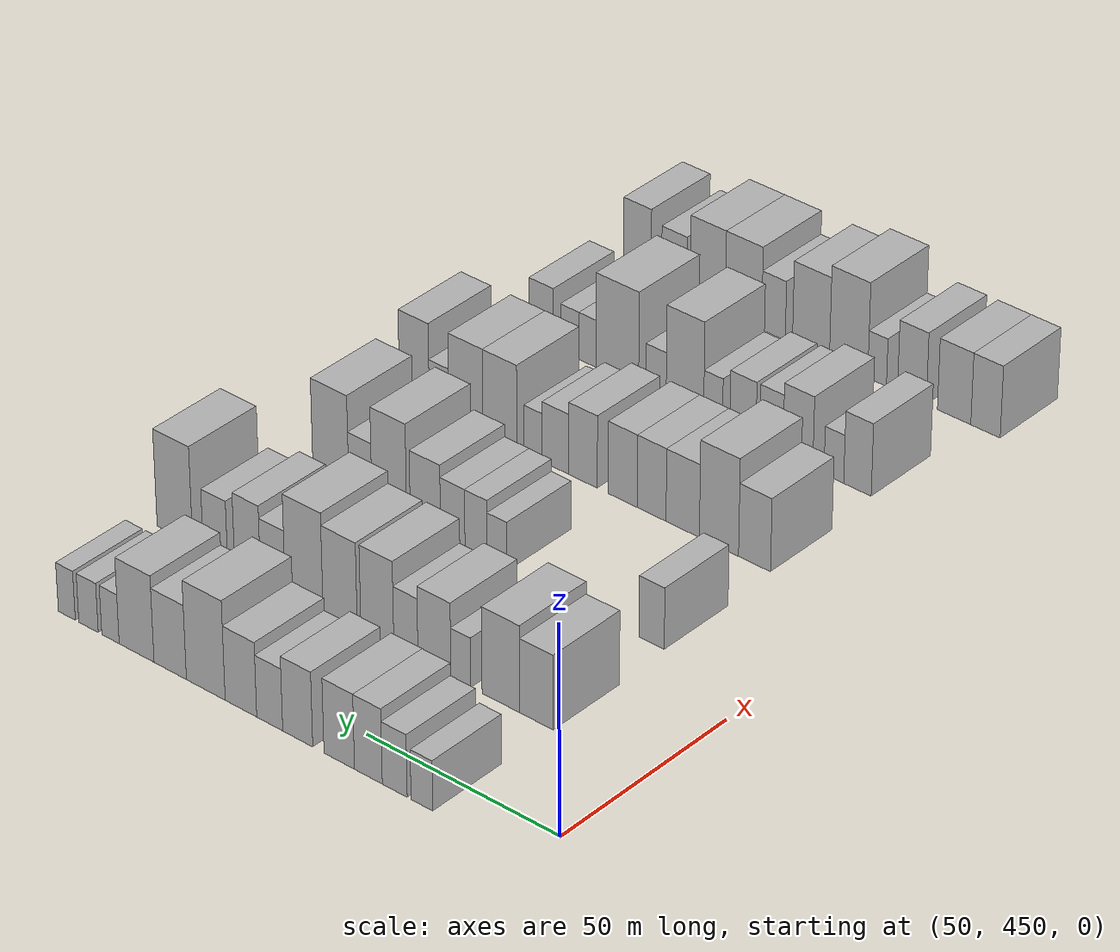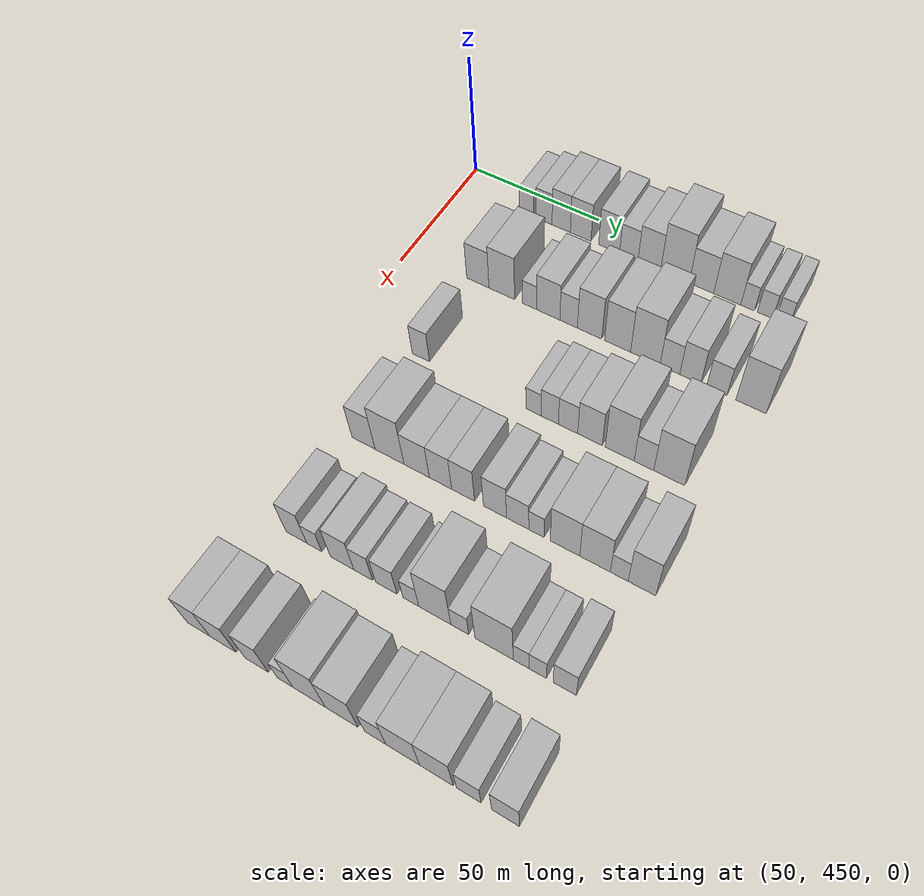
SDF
<sdf version="1.6">
 <world name="default">
  <model name="building_122">
   <static>1</static>
   <pose>50.0000 476.5835 0 0.000000 0.000000 0.000000</pose>
   <link name="link">
    <pose>0 0 6.00 0 0 0</pose>
    <collision name="collision"><geometry><box><size>20.0000 5.6495 12.0000</size></box></geometry></collision>
    <visual name="visual">
     <cast_shadows>0</cast_shadows>
     <geometry><box><size>20.0000 5.6495 12.0000</size></box></geometry>
     <material>
      <script>
       <uri>model://HANNAS_wall/materials/scripts</uri>
       <uri>model://HANNAS_wall/materials/textures</uri>
       <name>vrc/HANNAS_wall</name>
      </script>
     </material>
    </visual>
   </link>
  </model>
  <model name="building_123">
   <static>1</static>
   <pose>50.0000 483.6672 0 0.000000 0.000000 0.000000</pose>
   <link name="link">
    <pose>0 0 7.50 0 0 0</pose>
    <collision name="collision"><geometry><box><size>20.0000 6.5178 15.0000</size></box></geometry></collision>
    <visual name="visual">
     <cast_shadows>0</cast_shadows>
     <geometry><box><size>20.0000 6.5178 15.0000</size></box></geometry>
     <material>
      <script>
       <uri>model://HANNAS_wall/materials/scripts</uri>
       <uri>model://HANNAS_wall/materials/textures</uri>
       <name>vrc/HANNAS_wall</name>
      </script>
     </material>
    </visual>
   </link>
  </model>
  <model name="building_124">
   <static>1</static>
   <pose>50.0000 490.5840 0 0.000000 0.000000 0.000000</pose>
   <link name="link">
    <pose>0 0 9.00 0 0 0</pose>
    <collision name="collision"><geometry><box><size>20.0000 7.3159 18.0000</size></box></geometry></collision>
    <visual name="visual">
     <cast_shadows>0</cast_shadows>
     <geometry><box><size>20.0000 7.3159 18.0000</size></box></geometry>
     <material>
      <script>
       <uri>model://HANNAS_wall/materials/scripts</uri>
       <uri>model://HANNAS_wall/materials/textures</uri>
       <name>vrc/HANNAS_wall</name>
      </script>
     </material>
    </visual>
   </link>
  </model>
  <model name="building_125">
   <static>1</static>
   <pose>50.0000 498.2928 0 0.000000 0.000000 0.000000</pose>
   <link name="link">
    <pose>0 0 9.00 0 0 0</pose>
    <collision name="collision"><geometry><box><size>20.0000 8.1017 18.0000</size></box></geometry></collision>
    <visual name="visual">
     <cast_shadows>0</cast_shadows>
     <geometry><box><size>20.0000 8.1017 18.0000</size></box></geometry>
     <material>
      <script>
       <uri>model://HANNAS_wall/materials/scripts</uri>
       <uri>model://HANNAS_wall/materials/textures</uri>
       <name>vrc/HANNAS_wall</name>
      </script>
     </material>
    </visual>
   </link>
  </model>
  <model name="building_126">
   <static>1</static>
   <pose>50.0000 509.3685 0 0.000000 0.000000 0.000000</pose>
   <link name="link">
    <pose>0 0 9.00 0 0 0</pose>
    <collision name="collision"><geometry><box><size>20.0000 8.0498 18.0000</size></box></geometry></collision>
    <visual name="visual">
     <cast_shadows>0</cast_shadows>
     <geometry><box><size>20.0000 8.0498 18.0000</size></box></geometry>
     <material>
      <script>
       <uri>model://HANNAS_wall/materials/scripts</uri>
       <uri>model://HANNAS_wall/materials/textures</uri>
       <name>vrc/HANNAS_wall</name>
      </script>
     </material>
    </visual>
   </link>
  </model>
  <model name="building_127">
   <static>1</static>
   <pose>50.0000 516.9005 0 0.000000 0.000000 0.000000</pose>
   <link name="link">
    <pose>0 0 7.50 0 0 0</pose>
    <collision name="collision"><geometry><box><size>20.0000 7.0142 15.0000</size></box></geometry></collision>
    <visual name="visual">
     <cast_shadows>0</cast_shadows>
     <geometry><box><size>20.0000 7.0142 15.0000</size></box></geometry>
     <material>
      <script>
       <uri>model://HANNAS_wall/materials/scripts</uri>
       <uri>model://HANNAS_wall/materials/textures</uri>
       <name>vrc/HANNAS_wall</name>
      </script>
     </material>
    </visual>
   </link>
  </model>
  <model name="building_128">
   <static>1</static>
   <pose>50.0000 524.6987 0 0.000000 0.000000 0.000000</pose>
   <link name="link">
    <pose>0 0 9.00 0 0 0</pose>
    <collision name="collision"><geometry><box><size>20.0000 8.5821 18.0000</size></box></geometry></collision>
    <visual name="visual">
     <cast_shadows>0</cast_shadows>
     <geometry><box><size>20.0000 8.5821 18.0000</size></box></geometry>
     <material>
      <script>
       <uri>model://HANNAS_wall/materials/scripts</uri>
       <uri>model://HANNAS_wall/materials/textures</uri>
       <name>vrc/HANNAS_wall</name>
      </script>
     </material>
    </visual>
   </link>
  </model>
  <model name="building_129">
   <static>1</static>
   <pose>50.0000 534.3169 0 0.000000 0.000000 0.000000</pose>
   <link name="link">
    <pose>0 0 12.00 0 0 0</pose>
    <collision name="collision"><geometry><box><size>20.0000 10.6543 24.0000</size></box></geometry></collision>
    <visual name="visual">
     <cast_shadows>0</cast_shadows>
     <geometry><box><size>20.0000 10.6543 24.0000</size></box></geometry>
     <material>
      <script>
       <uri>model://HANNAS_wall/materials/scripts</uri>
       <uri>model://HANNAS_wall/materials/textures</uri>
       <name>vrc/HANNAS_wall</name>
      </script>
     </material>
    </visual>
   </link>
  </model>
  <model name="building_130">
   <static>1</static>
   <pose>50.0000 544.1222 0 0.000000 0.000000 0.000000</pose>
   <link name="link">
    <pose>0 0 9.00 0 0 0</pose>
    <collision name="collision"><geometry><box><size>20.0000 8.9563 18.0000</size></box></geometry></collision>
    <visual name="visual">
     <cast_shadows>0</cast_shadows>
     <geometry><box><size>20.0000 8.9563 18.0000</size></box></geometry>
     <material>
      <script>
       <uri>model://HANNAS_wall/materials/scripts</uri>
       <uri>model://HANNAS_wall/materials/textures</uri>
       <name>vrc/HANNAS_wall</name>
      </script>
     </material>
    </visual>
   </link>
  </model>
  <model name="building_131">
   <static>1</static>
   <pose>50.0000 553.4761 0 0.000000 0.000000 0.000000</pose>
   <link name="link">
    <pose>0 0 10.50 0 0 0</pose>
    <collision name="collision"><geometry><box><size>20.0000 9.7514 21.0000</size></box></geometry></collision>
    <visual name="visual">
     <cast_shadows>0</cast_shadows>
     <geometry><box><size>20.0000 9.7514 21.0000</size></box></geometry>
     <material>
      <script>
       <uri>model://HANNAS_wall/materials/scripts</uri>
       <uri>model://HANNAS_wall/materials/textures</uri>
       <name>vrc/HANNAS_wall</name>
      </script>
     </material>
    </visual>
   </link>
  </model>
  <model name="building_132">
   <static>1</static>
   <pose>50.0000 560.8015 0 0.000000 0.000000 0.000000</pose>
   <link name="link">
    <pose>0 0 6.00 0 0 0</pose>
    <collision name="collision"><geometry><box><size>20.0000 4.8995 12.0000</size></box></geometry></collision>
    <visual name="visual">
     <cast_shadows>0</cast_shadows>
     <geometry><box><size>20.0000 4.8995 12.0000</size></box></geometry>
     <material>
      <script>
       <uri>model://HANNAS_wall/materials/scripts</uri>
       <uri>model://HANNAS_wall/materials/textures</uri>
       <name>vrc/HANNAS_wall</name>
      </script>
     </material>
    </visual>
   </link>
  </model>
  <model name="building_133">
   <static>1</static>
   <pose>50.0000 566.9949 0 0.000000 0.000000 0.000000</pose>
   <link name="link">
    <pose>0 0 6.00 0 0 0</pose>
    <collision name="collision"><geometry><box><size>20.0000 5.4872 12.0000</size></box></geometry></collision>
    <visual name="visual">
     <cast_shadows>0</cast_shadows>
     <geometry><box><size>20.0000 5.4872 12.0000</size></box></geometry>
     <material>
      <script>
       <uri>model://HANNAS_wall/materials/scripts</uri>
       <uri>model://HANNAS_wall/materials/textures</uri>
       <name>vrc/HANNAS_wall</name>
      </script>
     </material>
    </visual>
   </link>
  </model>
  <model name="building_134">
   <static>1</static>
   <pose>50.0000 573.1457 0 0.000000 0.000000 0.000000</pose>
   <link name="link">
    <pose>0 0 6.00 0 0 0</pose>
    <collision name="collision"><geometry><box><size>20.0000 4.8145 12.0000</size></box></geometry></collision>
    <visual name="visual">
     <cast_shadows>0</cast_shadows>
     <geometry><box><size>20.0000 4.8145 12.0000</size></box></geometry>
     <material>
      <script>
       <uri>model://HANNAS_wall/materials/scripts</uri>
       <uri>model://HANNAS_wall/materials/textures</uri>
       <name>vrc/HANNAS_wall</name>
      </script>
     </material>
    </visual>
   </link>
  </model>
  <model name="building_249">
   <static>1</static>
   <pose>85.0000 477.8482 0 0.000000 0.000000 0.000000</pose>
   <link name="link">
    <pose>0 0 9.00 0 0 0</pose>
    <collision name="collision"><geometry><box><size>20.0000 8.7341 18.0000</size></box></geometry></collision>
    <visual name="visual">
     <cast_shadows>0</cast_shadows>
     <geometry><box><size>20.0000 8.7341 18.0000</size></box></geometry>
     <material>
      <script>
       <uri>model://HANNAS_wall/materials/scripts</uri>
       <uri>model://HANNAS_wall/materials/textures</uri>
       <name>vrc/HANNAS_wall</name>
      </script>
     </material>
    </visual>
   </link>
  </model>
  <model name="building_250">
   <static>1</static>
   <pose>85.0000 487.1938 0 0.000000 0.000000 0.000000</pose>
   <link name="link">
    <pose>0 0 10.50 0 0 0</pose>
    <collision name="collision"><geometry><box><size>20.0000 9.9571 21.0000</size></box></geometry></collision>
    <visual name="visual">
     <cast_shadows>0</cast_shadows>
     <geometry><box><size>20.0000 9.9571 21.0000</size></box></geometry>
     <material>
      <script>
       <uri>model://HANNAS_wall/materials/scripts</uri>
       <uri>model://HANNAS_wall/materials/textures</uri>
       <name>vrc/HANNAS_wall</name>
      </script>
     </material>
    </visual>
   </link>
  </model>
  <model name="building_251">
   <static>1</static>
   <pose>85.0000 497.8046 0 0.000000 0.000000 0.000000</pose>
   <link name="link">
    <pose>0 0 6.00 0 0 0</pose>
    <collision name="collision"><geometry><box><size>20.0000 5.2644 12.0000</size></box></geometry></collision>
    <visual name="visual">
     <cast_shadows>0</cast_shadows>
     <geometry><box><size>20.0000 5.2644 12.0000</size></box></geometry>
     <material>
      <script>
       <uri>model://HANNAS_wall/materials/scripts</uri>
       <uri>model://HANNAS_wall/materials/textures</uri>
       <name>vrc/HANNAS_wall</name>
      </script>
     </material>
    </visual>
   </link>
  </model>
  <model name="building_252">
   <static>1</static>
   <pose>85.0000 504.8577 0 0.000000 0.000000 0.000000</pose>
   <link name="link">
    <pose>0 0 9.00 0 0 0</pose>
    <collision name="collision"><geometry><box><size>20.0000 8.8419 18.0000</size></box></geometry></collision>
    <visual name="visual">
     <cast_shadows>0</cast_shadows>
     <geometry><box><size>20.0000 8.8419 18.0000</size></box></geometry>
     <material>
      <script>
       <uri>model://HANNAS_wall/materials/scripts</uri>
       <uri>model://HANNAS_wall/materials/textures</uri>
       <name>vrc/HANNAS_wall</name>
      </script>
     </material>
    </visual>
   </link>
  </model>
  <model name="building_253">
   <static>1</static>
   <pose>85.0000 512.5363 0 0.000000 0.000000 0.000000</pose>
   <link name="link">
    <pose>0 0 7.50 0 0 0</pose>
    <collision name="collision"><geometry><box><size>20.0000 6.5153 15.0000</size></box></geometry></collision>
    <visual name="visual">
     <cast_shadows>0</cast_shadows>
     <geometry><box><size>20.0000 6.5153 15.0000</size></box></geometry>
     <material>
      <script>
       <uri>model://HANNAS_wall/materials/scripts</uri>
       <uri>model://HANNAS_wall/materials/textures</uri>
       <name>vrc/HANNAS_wall</name>
      </script>
     </material>
    </visual>
   </link>
  </model>
  <model name="building_254">
   <static>1</static>
   <pose>85.0000 520.2665 0 0.000000 0.000000 0.000000</pose>
   <link name="link">
    <pose>0 0 10.50 0 0 0</pose>
    <collision name="collision"><geometry><box><size>20.0000 8.9451 21.0000</size></box></geometry></collision>
    <visual name="visual">
     <cast_shadows>0</cast_shadows>
     <geometry><box><size>20.0000 8.9451 21.0000</size></box></geometry>
     <material>
      <script>
       <uri>model://HANNAS_wall/materials/scripts</uri>
       <uri>model://HANNAS_wall/materials/textures</uri>
       <name>vrc/HANNAS_wall</name>
      </script>
     </material>
    </visual>
   </link>
  </model>
  <model name="building_255">
   <static>1</static>
   <pose>85.0000 530.4362 0 0.000000 0.000000 0.000000</pose>
   <link name="link">
    <pose>0 0 10.50 0 0 0</pose>
    <collision name="collision"><geometry><box><size>20.0000 9.3942 21.0000</size></box></geometry></collision>
    <visual name="visual">
     <cast_shadows>0</cast_shadows>
     <geometry><box><size>20.0000 9.3942 21.0000</size></box></geometry>
     <material>
      <script>
       <uri>model://HANNAS_wall/materials/scripts</uri>
       <uri>model://HANNAS_wall/materials/textures</uri>
       <name>vrc/HANNAS_wall</name>
      </script>
     </material>
    </visual>
   </link>
  </model>
  <model name="building_256">
   <static>1</static>
   <pose>85.0000 540.3655 0 0.000000 0.000000 0.000000</pose>
   <link name="link">
    <pose>0 0 12.00 0 0 0</pose>
    <collision name="collision"><geometry><box><size>20.0000 10.4645 24.0000</size></box></geometry></collision>
    <visual name="visual">
     <cast_shadows>0</cast_shadows>
     <geometry><box><size>20.0000 10.4645 24.0000</size></box></geometry>
     <material>
      <script>
       <uri>model://HANNAS_wall/materials/scripts</uri>
       <uri>model://HANNAS_wall/materials/textures</uri>
       <name>vrc/HANNAS_wall</name>
      </script>
     </material>
    </visual>
   </link>
  </model>
  <model name="building_257">
   <static>1</static>
   <pose>85.0000 549.0484 0 0.000000 0.000000 0.000000</pose>
   <link name="link">
    <pose>0 0 7.50 0 0 0</pose>
    <collision name="collision"><geometry><box><size>20.0000 6.9014 15.0000</size></box></geometry></collision>
    <visual name="visual">
     <cast_shadows>0</cast_shadows>
     <geometry><box><size>20.0000 6.9014 15.0000</size></box></geometry>
     <material>
      <script>
       <uri>model://HANNAS_wall/materials/scripts</uri>
       <uri>model://HANNAS_wall/materials/textures</uri>
       <name>vrc/HANNAS_wall</name>
      </script>
     </material>
    </visual>
   </link>
  </model>
  <model name="building_258">
   <static>1</static>
   <pose>85.0000 556.1403 0 0.000000 0.000000 0.000000</pose>
   <link name="link">
    <pose>0 0 9.00 0 0 0</pose>
    <collision name="collision"><geometry><box><size>20.0000 7.2825 18.0000</size></box></geometry></collision>
    <visual name="visual">
     <cast_shadows>0</cast_shadows>
     <geometry><box><size>20.0000 7.2825 18.0000</size></box></geometry>
     <material>
      <script>
       <uri>model://HANNAS_wall/materials/scripts</uri>
       <uri>model://HANNAS_wall/materials/textures</uri>
       <name>vrc/HANNAS_wall</name>
      </script>
     </material>
    </visual>
   </link>
  </model>
  <model name="building_259">
   <static>1</static>
   <pose>85.0000 565.2405 0 0.000000 0.000000 0.000000</pose>
   <link name="link">
    <pose>0 0 7.50 0 0 0</pose>
    <collision name="collision"><geometry><box><size>20.0000 6.9178 15.0000</size></box></geometry></collision>
    <visual name="visual">
     <cast_shadows>0</cast_shadows>
     <geometry><box><size>20.0000 6.9178 15.0000</size></box></geometry>
     <material>
      <script>
       <uri>model://HANNAS_wall/materials/scripts</uri>
       <uri>model://HANNAS_wall/materials/textures</uri>
       <name>vrc/HANNAS_wall</name>
      </script>
     </material>
    </visual>
   </link>
  </model>
  <model name="building_260">
   <static>1</static>
   <pose>85.0000 576.7835 0 0.000000 0.000000 0.000000</pose>
   <link name="link">
    <pose>0 0 12.00 0 0 0</pose>
    <collision name="collision"><geometry><box><size>20.0000 10.1681 24.0000</size></box></geometry></collision>
    <visual name="visual">
     <cast_shadows>0</cast_shadows>
     <geometry><box><size>20.0000 10.1681 24.0000</size></box></geometry>
     <material>
      <script>
       <uri>model://HANNAS_wall/materials/scripts</uri>
       <uri>model://HANNAS_wall/materials/textures</uri>
       <name>vrc/HANNAS_wall</name>
      </script>
     </material>
    </visual>
   </link>
  </model>
  <model name="building_361">
   <static>1</static>
   <pose>120.0000 477.8248 0 0.000000 0.000000 0.000000</pose>
   <link name="link">
    <pose>0 0 7.50 0 0 0</pose>
    <collision name="collision"><geometry><box><size>20.0000 6.6035 15.0000</size></box></geometry></collision>
    <visual name="visual">
     <cast_shadows>0</cast_shadows>
     <geometry><box><size>20.0000 6.6035 15.0000</size></box></geometry>
     <material>
      <script>
       <uri>model://HANNAS_wall/materials/scripts</uri>
       <uri>model://HANNAS_wall/materials/textures</uri>
       <name>vrc/HANNAS_wall</name>
      </script>
     </material>
    </visual>
   </link>
  </model>
  <model name="building_362">
   <static>1</static>
   <pose>120.0000 519.1641 0 0.000000 0.000000 0.000000</pose>
   <link name="link">
    <pose>0 0 6.00 0 0 0</pose>
    <collision name="collision"><geometry><box><size>20.0000 5.3584 12.0000</size></box></geometry></collision>
    <visual name="visual">
     <cast_shadows>0</cast_shadows>
     <geometry><box><size>20.0000 5.3584 12.0000</size></box></geometry>
     <material>
      <script>
       <uri>model://HANNAS_wall/materials/scripts</uri>
       <uri>model://HANNAS_wall/materials/textures</uri>
       <name>vrc/HANNAS_wall</name>
      </script>
     </material>
    </visual>
   </link>
  </model>
  <model name="building_363">
   <static>1</static>
   <pose>120.0000 524.9019 0 0.000000 0.000000 0.000000</pose>
   <link name="link">
    <pose>0 0 7.50 0 0 0</pose>
    <collision name="collision"><geometry><box><size>20.0000 6.1173 15.0000</size></box></geometry></collision>
    <visual name="visual">
     <cast_shadows>0</cast_shadows>
     <geometry><box><size>20.0000 6.1173 15.0000</size></box></geometry>
     <material>
      <script>
       <uri>model://HANNAS_wall/materials/scripts</uri>
       <uri>model://HANNAS_wall/materials/textures</uri>
       <name>vrc/HANNAS_wall</name>
      </script>
     </material>
    </visual>
   </link>
  </model>
  <model name="building_364">
   <static>1</static>
   <pose>120.0000 531.3183 0 0.000000 0.000000 0.000000</pose>
   <link name="link">
    <pose>0 0 7.50 0 0 0</pose>
    <collision name="collision"><geometry><box><size>20.0000 6.7154 15.0000</size></box></geometry></collision>
    <visual name="visual">
     <cast_shadows>0</cast_shadows>
     <geometry><box><size>20.0000 6.7154 15.0000</size></box></geometry>
     <material>
      <script>
       <uri>model://HANNAS_wall/materials/scripts</uri>
       <uri>model://HANNAS_wall/materials/textures</uri>
       <name>vrc/HANNAS_wall</name>
      </script>
     </material>
    </visual>
   </link>
  </model>
  <model name="building_365">
   <static>1</static>
   <pose>120.0000 538.8794 0 0.000000 0.000000 0.000000</pose>
   <link name="link">
    <pose>0 0 9.00 0 0 0</pose>
    <collision name="collision"><geometry><box><size>20.0000 8.4069 18.0000</size></box></geometry></collision>
    <visual name="visual">
     <cast_shadows>0</cast_shadows>
     <geometry><box><size>20.0000 8.4069 18.0000</size></box></geometry>
     <material>
      <script>
       <uri>model://HANNAS_wall/materials/scripts</uri>
       <uri>model://HANNAS_wall/materials/textures</uri>
       <name>vrc/HANNAS_wall</name>
      </script>
     </material>
    </visual>
   </link>
  </model>
  <model name="building_366">
   <static>1</static>
   <pose>120.0000 548.9608 0 0.000000 0.000000 0.000000</pose>
   <link name="link">
    <pose>0 0 12.00 0 0 0</pose>
    <collision name="collision"><geometry><box><size>20.0000 9.7559 24.0000</size></box></geometry></collision>
    <visual name="visual">
     <cast_shadows>0</cast_shadows>
     <geometry><box><size>20.0000 9.7559 24.0000</size></box></geometry>
     <material>
      <script>
       <uri>model://HANNAS_wall/materials/scripts</uri>
       <uri>model://HANNAS_wall/materials/textures</uri>
       <name>vrc/HANNAS_wall</name>
      </script>
     </material>
    </visual>
   </link>
  </model>
  <model name="building_367">
   <static>1</static>
   <pose>120.0000 557.0920 0 0.000000 0.000000 0.000000</pose>
   <link name="link">
    <pose>0 0 7.50 0 0 0</pose>
    <collision name="collision"><geometry><box><size>20.0000 6.5063 15.0000</size></box></geometry></collision>
    <visual name="visual">
     <cast_shadows>0</cast_shadows>
     <geometry><box><size>20.0000 6.5063 15.0000</size></box></geometry>
     <material>
      <script>
       <uri>model://HANNAS_wall/materials/scripts</uri>
       <uri>model://HANNAS_wall/materials/textures</uri>
       <name>vrc/HANNAS_wall</name>
      </script>
     </material>
    </visual>
   </link>
  </model>
  <model name="building_368">
   <static>1</static>
   <pose>120.0000 565.4447 0 0.000000 0.000000 0.000000</pose>
   <link name="link">
    <pose>0 0 12.00 0 0 0</pose>
    <collision name="collision"><geometry><box><size>20.0000 10.1991 24.0000</size></box></geometry></collision>
    <visual name="visual">
     <cast_shadows>0</cast_shadows>
     <geometry><box><size>20.0000 10.1991 24.0000</size></box></geometry>
     <material>
      <script>
       <uri>model://HANNAS_wall/materials/scripts</uri>
       <uri>model://HANNAS_wall/materials/textures</uri>
       <name>vrc/HANNAS_wall</name>
      </script>
     </material>
    </visual>
   </link>
  </model>
  <model name="building_481">
   <static>1</static>
   <pose>155.0000 479.9306 0 0.000000 0.000000 0.000000</pose>
   <link name="link">
    <pose>0 0 9.00 0 0 0</pose>
    <collision name="collision"><geometry><box><size>20.0000 8.4593 18.0000</size></box></geometry></collision>
    <visual name="visual">
     <cast_shadows>0</cast_shadows>
     <geometry><box><size>20.0000 8.4593 18.0000</size></box></geometry>
     <material>
      <script>
       <uri>model://HANNAS_wall/materials/scripts</uri>
       <uri>model://HANNAS_wall/materials/textures</uri>
       <name>vrc/HANNAS_wall</name>
      </script>
     </material>
    </visual>
   </link>
  </model>
  <model name="building_482">
   <static>1</static>
   <pose>155.0000 489.3802 0 0.000000 0.000000 0.000000</pose>
   <link name="link">
    <pose>0 0 12.00 0 0 0</pose>
    <collision name="collision"><geometry><box><size>20.0000 10.4399 24.0000</size></box></geometry></collision>
    <visual name="visual">
     <cast_shadows>0</cast_shadows>
     <geometry><box><size>20.0000 10.4399 24.0000</size></box></geometry>
     <material>
      <script>
       <uri>model://HANNAS_wall/materials/scripts</uri>
       <uri>model://HANNAS_wall/materials/textures</uri>
       <name>vrc/HANNAS_wall</name>
      </script>
     </material>
    </visual>
   </link>
  </model>
  <model name="building_483">
   <static>1</static>
   <pose>155.0000 499.0862 0 0.000000 0.000000 0.000000</pose>
   <link name="link">
    <pose>0 0 9.00 0 0 0</pose>
    <collision name="collision"><geometry><box><size>20.0000 8.9720 18.0000</size></box></geometry></collision>
    <visual name="visual">
     <cast_shadows>0</cast_shadows>
     <geometry><box><size>20.0000 8.9720 18.0000</size></box></geometry>
     <material>
      <script>
       <uri>model://HANNAS_wall/materials/scripts</uri>
       <uri>model://HANNAS_wall/materials/textures</uri>
       <name>vrc/HANNAS_wall</name>
      </script>
     </material>
    </visual>
   </link>
  </model>
  <model name="building_484">
   <static>1</static>
   <pose>155.0000 507.4782 0 0.000000 0.000000 0.000000</pose>
   <link name="link">
    <pose>0 0 9.00 0 0 0</pose>
    <collision name="collision"><geometry><box><size>20.0000 7.8121 18.0000</size></box></geometry></collision>
    <visual name="visual">
     <cast_shadows>0</cast_shadows>
     <geometry><box><size>20.0000 7.8121 18.0000</size></box></geometry>
     <material>
      <script>
       <uri>model://HANNAS_wall/materials/scripts</uri>
       <uri>model://HANNAS_wall/materials/textures</uri>
       <name>vrc/HANNAS_wall</name>
      </script>
     </material>
    </visual>
   </link>
  </model>
  <model name="building_485">
   <static>1</static>
   <pose>155.0000 515.3359 0 0.000000 0.000000 0.000000</pose>
   <link name="link">
    <pose>0 0 9.00 0 0 0</pose>
    <collision name="collision"><geometry><box><size>20.0000 7.9033 18.0000</size></box></geometry></collision>
    <visual name="visual">
     <cast_shadows>0</cast_shadows>
     <geometry><box><size>20.0000 7.9033 18.0000</size></box></geometry>
     <material>
      <script>
       <uri>model://HANNAS_wall/materials/scripts</uri>
       <uri>model://HANNAS_wall/materials/textures</uri>
       <name>vrc/HANNAS_wall</name>
      </script>
     </material>
    </visual>
   </link>
  </model>
  <model name="building_486">
   <static>1</static>
   <pose>155.0000 526.1929 0 0.000000 0.000000 0.000000</pose>
   <link name="link">
    <pose>0 0 9.00 0 0 0</pose>
    <collision name="collision"><geometry><box><size>20.0000 7.8107 18.0000</size></box></geometry></collision>
    <visual name="visual">
     <cast_shadows>0</cast_shadows>
     <geometry><box><size>20.0000 7.8107 18.0000</size></box></geometry>
     <material>
      <script>
       <uri>model://HANNAS_wall/materials/scripts</uri>
       <uri>model://HANNAS_wall/materials/textures</uri>
       <name>vrc/HANNAS_wall</name>
      </script>
     </material>
    </visual>
   </link>
  </model>
  <model name="building_487">
   <static>1</static>
   <pose>155.0000 533.7956 0 0.000000 0.000000 0.000000</pose>
   <link name="link">
    <pose>0 0 7.50 0 0 0</pose>
    <collision name="collision"><geometry><box><size>20.0000 7.3947 15.0000</size></box></geometry></collision>
    <visual name="visual">
     <cast_shadows>0</cast_shadows>
     <geometry><box><size>20.0000 7.3947 15.0000</size></box></geometry>
     <material>
      <script>
       <uri>model://HANNAS_wall/materials/scripts</uri>
       <uri>model://HANNAS_wall/materials/textures</uri>
       <name>vrc/HANNAS_wall</name>
      </script>
     </material>
    </visual>
   </link>
  </model>
  <model name="building_488">
   <static>1</static>
   <pose>155.0000 540.0316 0 0.000000 0.000000 0.000000</pose>
   <link name="link">
    <pose>0 0 6.00 0 0 0</pose>
    <collision name="collision"><geometry><box><size>20.0000 5.0772 12.0000</size></box></geometry></collision>
    <visual name="visual">
     <cast_shadows>0</cast_shadows>
     <geometry><box><size>20.0000 5.0772 12.0000</size></box></geometry>
     <material>
      <script>
       <uri>model://HANNAS_wall/materials/scripts</uri>
       <uri>model://HANNAS_wall/materials/textures</uri>
       <name>vrc/HANNAS_wall</name>
      </script>
     </material>
    </visual>
   </link>
  </model>
  <model name="building_489">
   <static>1</static>
   <pose>155.0000 549.3465 0 0.000000 0.000000 0.000000</pose>
   <link name="link">
    <pose>0 0 10.50 0 0 0</pose>
    <collision name="collision"><geometry><box><size>20.0000 9.5526 21.0000</size></box></geometry></collision>
    <visual name="visual">
     <cast_shadows>0</cast_shadows>
     <geometry><box><size>20.0000 9.5526 21.0000</size></box></geometry>
     <material>
      <script>
       <uri>model://HANNAS_wall/materials/scripts</uri>
       <uri>model://HANNAS_wall/materials/textures</uri>
       <name>vrc/HANNAS_wall</name>
      </script>
     </material>
    </visual>
   </link>
  </model>
  <model name="building_490">
   <static>1</static>
   <pose>155.0000 558.9580 0 0.000000 0.000000 0.000000</pose>
   <link name="link">
    <pose>0 0 10.50 0 0 0</pose>
    <collision name="collision"><geometry><box><size>20.0000 9.6704 21.0000</size></box></geometry></collision>
    <visual name="visual">
     <cast_shadows>0</cast_shadows>
     <geometry><box><size>20.0000 9.6704 21.0000</size></box></geometry>
     <material>
      <script>
       <uri>model://HANNAS_wall/materials/scripts</uri>
       <uri>model://HANNAS_wall/materials/textures</uri>
       <name>vrc/HANNAS_wall</name>
      </script>
     </material>
    </visual>
   </link>
  </model>
  <model name="building_491">
   <static>1</static>
   <pose>155.0000 566.6015 0 0.000000 0.000000 0.000000</pose>
   <link name="link">
    <pose>0 0 6.00 0 0 0</pose>
    <collision name="collision"><geometry><box><size>20.0000 5.6168 12.0000</size></box></geometry></collision>
    <visual name="visual">
     <cast_shadows>0</cast_shadows>
     <geometry><box><size>20.0000 5.6168 12.0000</size></box></geometry>
     <material>
      <script>
       <uri>model://HANNAS_wall/materials/scripts</uri>
       <uri>model://HANNAS_wall/materials/textures</uri>
       <name>vrc/HANNAS_wall</name>
      </script>
     </material>
    </visual>
   </link>
  </model>
  <model name="building_492">
   <static>1</static>
   <pose>155.0000 573.6858 0 0.000000 0.000000 0.000000</pose>
   <link name="link">
    <pose>0 0 10.50 0 0 0</pose>
    <collision name="collision"><geometry><box><size>20.0000 8.5517 21.0000</size></box></geometry></collision>
    <visual name="visual">
     <cast_shadows>0</cast_shadows>
     <geometry><box><size>20.0000 8.5517 21.0000</size></box></geometry>
     <material>
      <script>
       <uri>model://HANNAS_wall/materials/scripts</uri>
       <uri>model://HANNAS_wall/materials/textures</uri>
       <name>vrc/HANNAS_wall</name>
      </script>
     </material>
    </visual>
   </link>
  </model>
  <model name="building_606">
   <static>1</static>
   <pose>190.0000 480.9505 0 0.000000 0.000000 0.000000</pose>
   <link name="link">
    <pose>0 0 9.00 0 0 0</pose>
    <collision name="collision"><geometry><box><size>20.0000 7.3176 18.0000</size></box></geometry></collision>
    <visual name="visual">
     <cast_shadows>0</cast_shadows>
     <geometry><box><size>20.0000 7.3176 18.0000</size></box></geometry>
     <material>
      <script>
       <uri>model://HANNAS_wall/materials/scripts</uri>
       <uri>model://HANNAS_wall/materials/textures</uri>
       <name>vrc/HANNAS_wall</name>
      </script>
     </material>
    </visual>
   </link>
  </model>
  <model name="building_607">
   <static>1</static>
   <pose>190.0000 487.2509 0 0.000000 0.000000 0.000000</pose>
   <link name="link">
    <pose>0 0 6.00 0 0 0</pose>
    <collision name="collision"><geometry><box><size>20.0000 5.2833 12.0000</size></box></geometry></collision>
    <visual name="visual">
     <cast_shadows>0</cast_shadows>
     <geometry><box><size>20.0000 5.2833 12.0000</size></box></geometry>
     <material>
      <script>
       <uri>model://HANNAS_wall/materials/scripts</uri>
       <uri>model://HANNAS_wall/materials/textures</uri>
       <name>vrc/HANNAS_wall</name>
      </script>
     </material>
    </visual>
   </link>
  </model>
  <model name="building_608">
   <static>1</static>
   <pose>190.0000 496.9190 0 0.000000 0.000000 0.000000</pose>
   <link name="link">
    <pose>0 0 9.00 0 0 0</pose>
    <collision name="collision"><geometry><box><size>20.0000 8.0529 18.0000</size></box></geometry></collision>
    <visual name="visual">
     <cast_shadows>0</cast_shadows>
     <geometry><box><size>20.0000 8.0529 18.0000</size></box></geometry>
     <material>
      <script>
       <uri>model://HANNAS_wall/materials/scripts</uri>
       <uri>model://HANNAS_wall/materials/textures</uri>
       <name>vrc/HANNAS_wall</name>
      </script>
     </material>
    </visual>
   </link>
  </model>
  <model name="building_609">
   <static>1</static>
   <pose>190.0000 504.1299 0 0.000000 0.000000 0.000000</pose>
   <link name="link">
    <pose>0 0 7.50 0 0 0</pose>
    <collision name="collision"><geometry><box><size>20.0000 6.3688 15.0000</size></box></geometry></collision>
    <visual name="visual">
     <cast_shadows>0</cast_shadows>
     <geometry><box><size>20.0000 6.3688 15.0000</size></box></geometry>
     <material>
      <script>
       <uri>model://HANNAS_wall/materials/scripts</uri>
       <uri>model://HANNAS_wall/materials/textures</uri>
       <name>vrc/HANNAS_wall</name>
      </script>
     </material>
    </visual>
   </link>
  </model>
  <model name="building_610">
   <static>1</static>
   <pose>190.0000 511.8845 0 0.000000 0.000000 0.000000</pose>
   <link name="link">
    <pose>0 0 7.50 0 0 0</pose>
    <collision name="collision"><geometry><box><size>20.0000 7.1405 15.0000</size></box></geometry></collision>
    <visual name="visual">
     <cast_shadows>0</cast_shadows>
     <geometry><box><size>20.0000 7.1405 15.0000</size></box></geometry>
     <material>
      <script>
       <uri>model://HANNAS_wall/materials/scripts</uri>
       <uri>model://HANNAS_wall/materials/textures</uri>
       <name>vrc/HANNAS_wall</name>
      </script>
     </material>
    </visual>
   </link>
  </model>
  <model name="building_611">
   <static>1</static>
   <pose>190.0000 520.0517 0 0.000000 0.000000 0.000000</pose>
   <link name="link">
    <pose>0 0 6.00 0 0 0</pose>
    <collision name="collision"><geometry><box><size>20.0000 5.1938 12.0000</size></box></geometry></collision>
    <visual name="visual">
     <cast_shadows>0</cast_shadows>
     <geometry><box><size>20.0000 5.1938 12.0000</size></box></geometry>
     <material>
      <script>
       <uri>model://HANNAS_wall/materials/scripts</uri>
       <uri>model://HANNAS_wall/materials/textures</uri>
       <name>vrc/HANNAS_wall</name>
      </script>
     </material>
    </visual>
   </link>
  </model>
  <model name="building_612">
   <static>1</static>
   <pose>190.0000 527.8487 0 0.000000 0.000000 0.000000</pose>
   <link name="link">
    <pose>0 0 12.00 0 0 0</pose>
    <collision name="collision"><geometry><box><size>20.0000 10.4003 24.0000</size></box></geometry></collision>
    <visual name="visual">
     <cast_shadows>0</cast_shadows>
     <geometry><box><size>20.0000 10.4003 24.0000</size></box></geometry>
     <material>
      <script>
       <uri>model://HANNAS_wall/materials/scripts</uri>
       <uri>model://HANNAS_wall/materials/textures</uri>
       <name>vrc/HANNAS_wall</name>
      </script>
     </material>
    </visual>
   </link>
  </model>
  <model name="building_613">
   <static>1</static>
   <pose>190.0000 535.8964 0 0.000000 0.000000 0.000000</pose>
   <link name="link">
    <pose>0 0 6.00 0 0 0</pose>
    <collision name="collision"><geometry><box><size>20.0000 5.6952 12.0000</size></box></geometry></collision>
    <visual name="visual">
     <cast_shadows>0</cast_shadows>
     <geometry><box><size>20.0000 5.6952 12.0000</size></box></geometry>
     <material>
      <script>
       <uri>model://HANNAS_wall/materials/scripts</uri>
       <uri>model://HANNAS_wall/materials/textures</uri>
       <name>vrc/HANNAS_wall</name>
      </script>
     </material>
    </visual>
   </link>
  </model>
  <model name="building_614">
   <static>1</static>
   <pose>190.0000 546.7368 0 0.000000 0.000000 0.000000</pose>
   <link name="link">
    <pose>0 0 12.00 0 0 0</pose>
    <collision name="collision"><geometry><box><size>20.0000 11.9855 24.0000</size></box></geometry></collision>
    <visual name="visual">
     <cast_shadows>0</cast_shadows>
     <geometry><box><size>20.0000 11.9855 24.0000</size></box></geometry>
     <material>
      <script>
       <uri>model://HANNAS_wall/materials/scripts</uri>
       <uri>model://HANNAS_wall/materials/textures</uri>
       <name>vrc/HANNAS_wall</name>
      </script>
     </material>
    </visual>
   </link>
  </model>
  <model name="building_615">
   <static>1</static>
   <pose>190.0000 555.1532 0 0.000000 0.000000 0.000000</pose>
   <link name="link">
    <pose>0 0 6.00 0 0 0</pose>
    <collision name="collision"><geometry><box><size>20.0000 4.8474 12.0000</size></box></geometry></collision>
    <visual name="visual">
     <cast_shadows>0</cast_shadows>
     <geometry><box><size>20.0000 4.8474 12.0000</size></box></geometry>
     <material>
      <script>
       <uri>model://HANNAS_wall/materials/scripts</uri>
       <uri>model://HANNAS_wall/materials/textures</uri>
       <name>vrc/HANNAS_wall</name>
      </script>
     </material>
    </visual>
   </link>
  </model>
  <model name="building_616">
   <static>1</static>
   <pose>190.0000 560.2157 0 0.000000 0.000000 0.000000</pose>
   <link name="link">
    <pose>0 0 6.00 0 0 0</pose>
    <collision name="collision"><geometry><box><size>20.0000 5.2775 12.0000</size></box></geometry></collision>
    <visual name="visual">
     <cast_shadows>0</cast_shadows>
     <geometry><box><size>20.0000 5.2775 12.0000</size></box></geometry>
     <material>
      <script>
       <uri>model://HANNAS_wall/materials/scripts</uri>
       <uri>model://HANNAS_wall/materials/textures</uri>
       <name>vrc/HANNAS_wall</name>
      </script>
     </material>
    </visual>
   </link>
  </model>
  <model name="building_617">
   <static>1</static>
   <pose>190.0000 568.3341 0 0.000000 0.000000 0.000000</pose>
   <link name="link">
    <pose>0 0 7.50 0 0 0</pose>
    <collision name="collision"><geometry><box><size>20.0000 6.9594 15.0000</size></box></geometry></collision>
    <visual name="visual">
     <cast_shadows>0</cast_shadows>
     <geometry><box><size>20.0000 6.9594 15.0000</size></box></geometry>
     <material>
      <script>
       <uri>model://HANNAS_wall/materials/scripts</uri>
       <uri>model://HANNAS_wall/materials/textures</uri>
       <name>vrc/HANNAS_wall</name>
      </script>
     </material>
    </visual>
   </link>
  </model>
  <model name="building_738">
   <static>1</static>
   <pose>225.0000 474.2722 0 0.000000 0.000000 0.000000</pose>
   <link name="link">
    <pose>0 0 9.00 0 0 0</pose>
    <collision name="collision"><geometry><box><size>20.0000 7.8213 18.0000</size></box></geometry></collision>
    <visual name="visual">
     <cast_shadows>0</cast_shadows>
     <geometry><box><size>20.0000 7.8213 18.0000</size></box></geometry>
     <material>
      <script>
       <uri>model://HANNAS_wall/materials/scripts</uri>
       <uri>model://HANNAS_wall/materials/textures</uri>
       <name>vrc/HANNAS_wall</name>
      </script>
     </material>
    </visual>
   </link>
  </model>
  <model name="building_739">
   <static>1</static>
   <pose>225.0000 482.6576 0 0.000000 0.000000 0.000000</pose>
   <link name="link">
    <pose>0 0 9.00 0 0 0</pose>
    <collision name="collision"><geometry><box><size>20.0000 8.9495 18.0000</size></box></geometry></collision>
    <visual name="visual">
     <cast_shadows>0</cast_shadows>
     <geometry><box><size>20.0000 8.9495 18.0000</size></box></geometry>
     <material>
      <script>
       <uri>model://HANNAS_wall/materials/scripts</uri>
       <uri>model://HANNAS_wall/materials/textures</uri>
       <name>vrc/HANNAS_wall</name>
      </script>
     </material>
    </visual>
   </link>
  </model>
  <model name="building_740">
   <static>1</static>
   <pose>225.0000 494.0298 0 0.000000 0.000000 0.000000</pose>
   <link name="link">
    <pose>0 0 9.00 0 0 0</pose>
    <collision name="collision"><geometry><box><size>20.0000 7.7950 18.0000</size></box></geometry></collision>
    <visual name="visual">
     <cast_shadows>0</cast_shadows>
     <geometry><box><size>20.0000 7.7950 18.0000</size></box></geometry>
     <material>
      <script>
       <uri>model://HANNAS_wall/materials/scripts</uri>
       <uri>model://HANNAS_wall/materials/textures</uri>
       <name>vrc/HANNAS_wall</name>
      </script>
     </material>
    </visual>
   </link>
  </model>
  <model name="building_741">
   <static>1</static>
   <pose>225.0000 503.4804 0 0.000000 0.000000 0.000000</pose>
   <link name="link">
    <pose>0 0 6.00 0 0 0</pose>
    <collision name="collision"><geometry><box><size>20.0000 5.1062 12.0000</size></box></geometry></collision>
    <visual name="visual">
     <cast_shadows>0</cast_shadows>
     <geometry><box><size>20.0000 5.1062 12.0000</size></box></geometry>
     <material>
      <script>
       <uri>model://HANNAS_wall/materials/scripts</uri>
       <uri>model://HANNAS_wall/materials/textures</uri>
       <name>vrc/HANNAS_wall</name>
      </script>
     </material>
    </visual>
   </link>
  </model>
  <model name="building_742">
   <static>1</static>
   <pose>225.0000 511.3035 0 0.000000 0.000000 0.000000</pose>
   <link name="link">
    <pose>0 0 12.00 0 0 0</pose>
    <collision name="collision"><geometry><box><size>20.0000 10.5400 24.0000</size></box></geometry></collision>
    <visual name="visual">
     <cast_shadows>0</cast_shadows>
     <geometry><box><size>20.0000 10.5400 24.0000</size></box></geometry>
     <material>
      <script>
       <uri>model://HANNAS_wall/materials/scripts</uri>
       <uri>model://HANNAS_wall/materials/textures</uri>
       <name>vrc/HANNAS_wall</name>
      </script>
     </material>
    </visual>
   </link>
  </model>
  <model name="building_743">
   <static>1</static>
   <pose>225.0000 521.7026 0 0.000000 0.000000 0.000000</pose>
   <link name="link">
    <pose>0 0 10.50 0 0 0</pose>
    <collision name="collision"><geometry><box><size>20.0000 10.2582 21.0000</size></box></geometry></collision>
    <visual name="visual">
     <cast_shadows>0</cast_shadows>
     <geometry><box><size>20.0000 10.2582 21.0000</size></box></geometry>
     <material>
      <script>
       <uri>model://HANNAS_wall/materials/scripts</uri>
       <uri>model://HANNAS_wall/materials/textures</uri>
       <name>vrc/HANNAS_wall</name>
      </script>
     </material>
    </visual>
   </link>
  </model>
  <model name="building_744">
   <static>1</static>
   <pose>225.0000 532.1408 0 0.000000 0.000000 0.000000</pose>
   <link name="link">
    <pose>0 0 7.50 0 0 0</pose>
    <collision name="collision"><geometry><box><size>20.0000 6.6180 15.0000</size></box></geometry></collision>
    <visual name="visual">
     <cast_shadows>0</cast_shadows>
     <geometry><box><size>20.0000 6.6180 15.0000</size></box></geometry>
     <material>
      <script>
       <uri>model://HANNAS_wall/materials/scripts</uri>
       <uri>model://HANNAS_wall/materials/textures</uri>
       <name>vrc/HANNAS_wall</name>
      </script>
     </material>
    </visual>
   </link>
  </model>
  <model name="building_745">
   <static>1</static>
   <pose>225.0000 540.5768 0 0.000000 0.000000 0.000000</pose>
   <link name="link">
    <pose>0 0 10.50 0 0 0</pose>
    <collision name="collision"><geometry><box><size>20.0000 10.2539 21.0000</size></box></geometry></collision>
    <visual name="visual">
     <cast_shadows>0</cast_shadows>
     <geometry><box><size>20.0000 10.2539 21.0000</size></box></geometry>
     <material>
      <script>
       <uri>model://HANNAS_wall/materials/scripts</uri>
       <uri>model://HANNAS_wall/materials/textures</uri>
       <name>vrc/HANNAS_wall</name>
      </script>
     </material>
    </visual>
   </link>
  </model>
  <model name="building_746">
   <static>1</static>
   <pose>225.0000 550.6953 0 0.000000 0.000000 0.000000</pose>
   <link name="link">
    <pose>0 0 10.50 0 0 0</pose>
    <collision name="collision"><geometry><box><size>20.0000 9.9832 21.0000</size></box></geometry></collision>
    <visual name="visual">
     <cast_shadows>0</cast_shadows>
     <geometry><box><size>20.0000 9.9832 21.0000</size></box></geometry>
     <material>
      <script>
       <uri>model://HANNAS_wall/materials/scripts</uri>
       <uri>model://HANNAS_wall/materials/textures</uri>
       <name>vrc/HANNAS_wall</name>
      </script>
     </material>
    </visual>
   </link>
  </model>
  <model name="building_747">
   <static>1</static>
   <pose>225.0000 560.2806 0 0.000000 0.000000 0.000000</pose>
   <link name="link">
    <pose>0 0 7.50 0 0 0</pose>
    <collision name="collision"><geometry><box><size>20.0000 7.1873 15.0000</size></box></geometry></collision>
    <visual name="visual">
     <cast_shadows>0</cast_shadows>
     <geometry><box><size>20.0000 7.1873 15.0000</size></box></geometry>
     <material>
      <script>
       <uri>model://HANNAS_wall/materials/scripts</uri>
       <uri>model://HANNAS_wall/materials/textures</uri>
       <name>vrc/HANNAS_wall</name>
      </script>
     </material>
    </visual>
   </link>
  </model>
  <model name="building_748">
   <static>1</static>
   <pose>225.0000 570.8505 0 0.000000 0.000000 0.000000</pose>
   <link name="link">
    <pose>0 0 9.00 0 0 0</pose>
    <collision name="collision"><geometry><box><size>20.0000 7.9527 18.0000</size></box></geometry></collision>
    <visual name="visual">
     <cast_shadows>0</cast_shadows>
     <geometry><box><size>20.0000 7.9527 18.0000</size></box></geometry>
     <material>
      <script>
       <uri>model://HANNAS_wall/materials/scripts</uri>
       <uri>model://HANNAS_wall/materials/textures</uri>
       <name>vrc/HANNAS_wall</name>
      </script>
     </material>
    </visual>
   </link>
  </model>
 </world>
</sdf>
